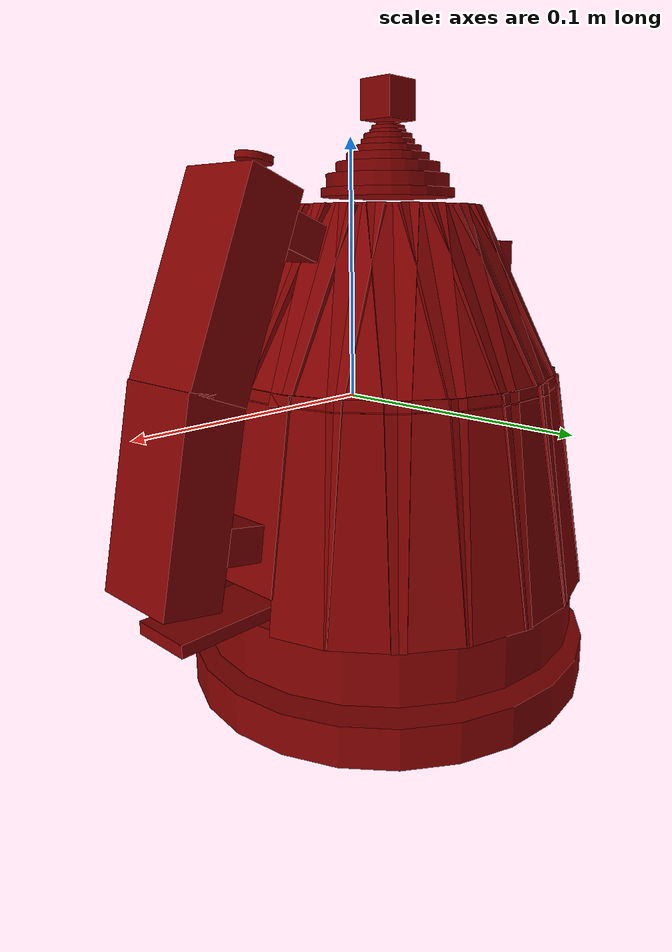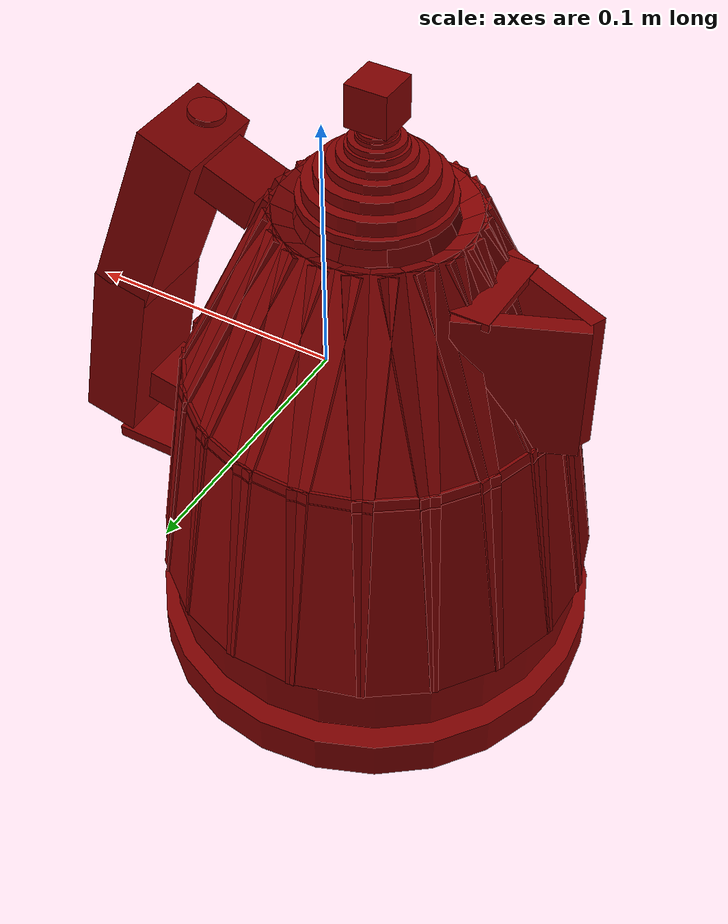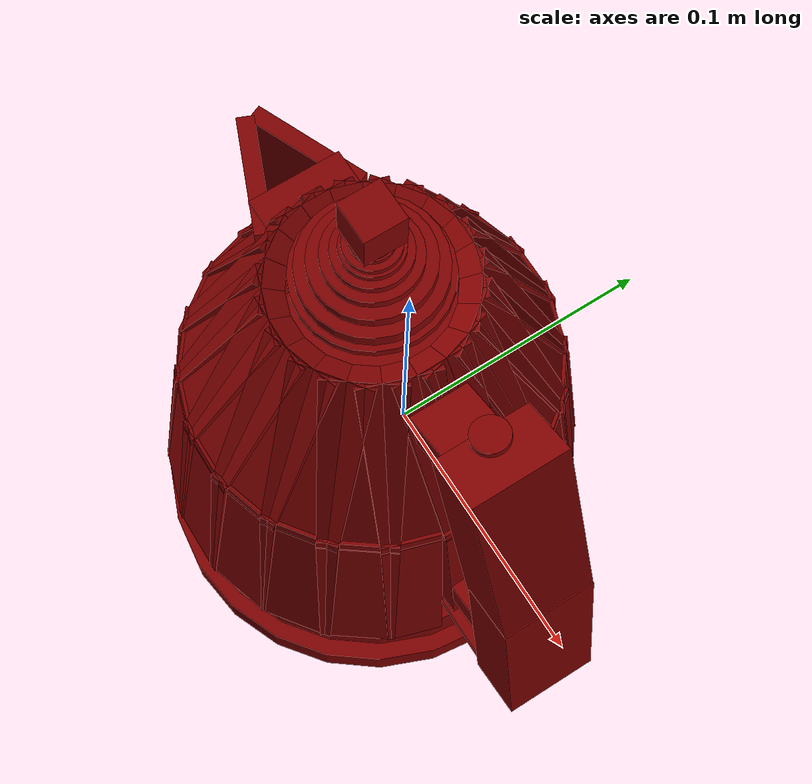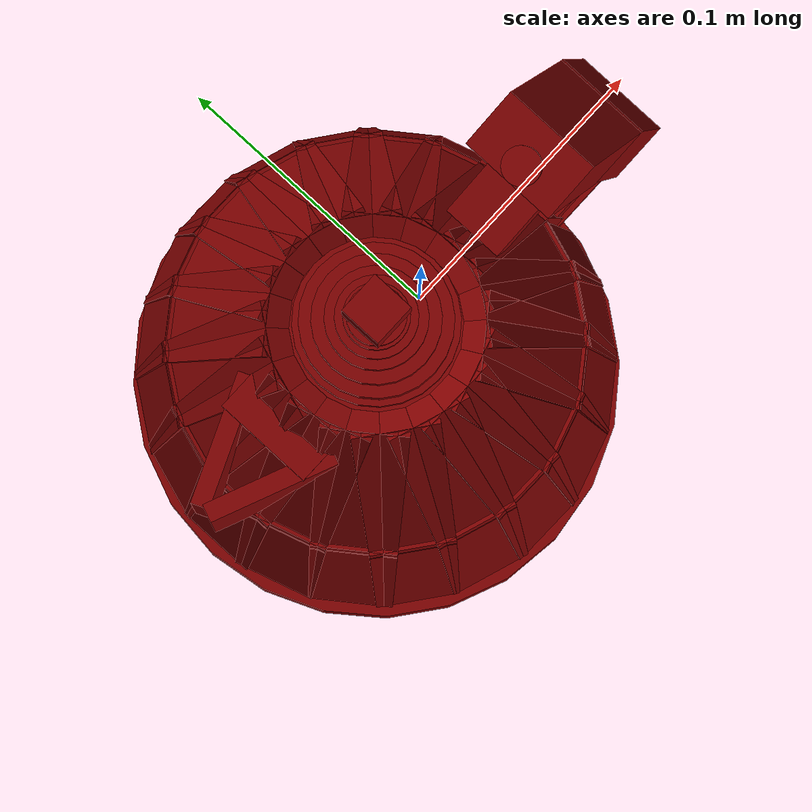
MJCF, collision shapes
<?xml version='1.0' encoding='UTF-8'?>
<mujoco model="model">
  <compiler angle="radian"/>
  <asset>
    <mesh file="visuals/Body001.obj" name="Body001_vis"/>
    <mesh file="visuals/Button001.obj" name="Button001_vis"/>
    <mesh file="visuals/Handle001.obj" name="Handle001_vis"/>
    <mesh file="visuals/Lever001.obj" name="Lever001_vis"/>
    <mesh file="visuals/Lid001.obj" name="Lid001_vis"/>
    <texture file="visuals/T_BC001.png" name="Body001_material" type="2d"/>
    <material name="Body001_material" rgba="1 1 1 1.0" texture="Body001_material" shininess="0.5" specular="0.3103448502657381"/>
    <texture file="visuals/T_BC001.png" name="Handle001_material" type="2d"/>
    <material name="Handle001_material" rgba="1 1 1 1.0" texture="Handle001_material" shininess="0.5" specular="0.3103448502657381"/>
    <texture file="visuals/T_BC001.png" name="Button001_material" type="2d"/>
    <material name="Button001_material" rgba="1 1 1 1.0" texture="Button001_material" shininess="0.5" specular="0.3103448502657381"/>
    <texture file="visuals/T_BC001.png" name="Lever001_material" type="2d"/>
    <material name="Lever001_material" rgba="1 1 1 1.0" texture="Lever001_material" shininess="0.5" specular="0.3103448502657381"/>
    <texture file="visuals/T_BC001.png" name="Lid001_material" type="2d"/>
    <material name="Lid001_material" rgba="1 1 1 1.0" texture="Lid001_material" shininess="0.5" specular="0.3103448502657381"/>
  </asset>
  <default>
    <default class="visual">
      <geom conaffinity="0" contype="0" group="1" type="mesh"/>
    </default>
    <default class="collision">
      <geom group="0" rgba="0.5 0 0 0.5"/>
    </default>
    <default class="spawn">
      <geom group="0" rgba="1 1 1 0.5" contype="0" conaffinity="0"/>
      <site group="0" rgba="1 1 1 0.5"/>
    </default>
    <default class="region">
      <geom group="1" conaffinity="0" contype="0" rgba="0 1 0 0"/>
    </default>
  </default>
  <worldbody>
    <body>
      <body name="object">
        <geom mesh="Body001_vis" type="mesh" solimp="0.998 0.998 0.001" solref="0.001 1" density="100" friction="0.95 0.3 0.1" class="visual" material="Body001_material"/>
        <geom class="collision" type="cylinder" pos="-0.021066 0.000000 -0.114406" size="0.0858076885342598 0.008392764255404472" quat="1.0 0.0 0.0 0.0"/>
        <body name="Handle001">
          <joint axis="0.0 0.0 1.0" pos="0.001417 0.000073 -0.008073" limited="true" name="Handle001_joint" range="0.0 0.1" type="slide" damping="1" frictionloss="1" armature=".01" stiffness="0.05"/>
          <geom mesh="Handle001_vis" type="mesh" solimp="0.998 0.998 0.001" solref="0.001 1" density="100" friction="0.95 0.3 0.1" class="visual" material="Handle001_material"/>
          <geom class="collision" type="cylinder" pos="-0.021156 0.000000 -0.089417" size="0.08030083030462265 0.011650314554572105" quat="1.0 0.0 0.0 0.0"/>
          <geom class="collision" type="box" pos="-0.093040 -0.000143 -0.035317" size="0.004059980623424053 0.014695623889565468 0.044109322130680084" quat="0.997124195098877 6.028130727097107e-16 0.07578504085540771 1.0182403364922266e-08"/>
          <geom class="collision" type="box" pos="-0.070039 -0.000143 0.038148" size="0.004059980623424053 0.014695624820888042 0.03961717337369919" quat="0.9738648533821106 3.839531740235016e-15 0.22712816298007965 3.051667363251909e-08"/>
          <geom class="collision" type="box" pos="-0.060694 0.028745 0.038148" size="0.004059980623424053 0.014695626683533192 0.03961717337369919" quat="0.9257121086120605 0.07053609937429428 0.21589778363704681 -0.30243992805480957"/>
          <geom class="collision" type="box" pos="-0.079259 0.042325 -0.035317" size="0.004059980623424053 0.014695624820888042 0.044109322130680084" quat="0.947821319103241 0.023535536602139473 0.07203784584999084 -0.3096633851528168"/>
          <geom class="collision" type="box" pos="-0.042660 0.068593 -0.035317" size="0.004059980623424053 0.014695623889565468 0.044109322130680084" quat="0.8030538558959961 0.04492328688502312 0.061034996062517166 -0.5910677909851074"/>
          <geom class="collision" type="box" pos="-0.035823 0.046631 0.038148" size="0.004059980623424053 0.014695624820888042 0.03961717337369919" quat="0.7843215465545654 0.1346353143453598 0.18292218446731567 -0.5772802829742432"/>
          <geom class="collision" type="box" pos="-0.005823 0.046417 0.038148" size="0.004059980623424053 0.014695624820888042 0.03961717337369919" quat="0.569338321685791 0.18427114188671112 0.13278304040431976 -0.7901055216789246"/>
          <geom class="collision" type="box" pos="0.001456 0.068236 -0.035317" size="0.004059980623424053 0.014695623889565468 0.044109322130680084" quat="0.5829359889030457 0.06148510426282883 0.04430524259805679 -0.8089760541915894"/>
          <geom class="collision" type="box" pos="0.036579 0.042826 -0.035317" size="0.0040599810890853405 0.014695623889565468 0.044109322130680084" quat="0.3118728697299957 0.07198276370763779 0.02370346523821354 -0.947096586227417"/>
          <geom class="collision" type="box" pos="0.018078 0.029160 0.038148" size="0.004059980623424053 0.014695624820888042 0.03961717337369919" quat="0.3045981228351593 0.21573257446289062 0.07103938609361649 -0.925004243850708"/>
          <geom class="collision" type="box" pos="0.027724 0.000634 0.038148" size="0.004059980623424053 0.014695624820888042 0.03961717337369919" quat="0.004890267737209797 0.22712522745132446 0.0011405178811401129 -0.9738526344299316"/>
          <geom class="collision" type="box" pos="0.049654 0.000854 -0.028317" size="0.004059980623424053 0.014695623889565468 0.03702772408723831" quat="0.0050069475546479225 0.07578408718109131 0.0003805453306995332 -0.9971116185188293"/>
          <geom class="collision" type="box" pos="-0.060538 -0.028959 0.038148" size="0.004059980623424053 0.014695624820888042 0.03961717337369919" quat="0.9257802963256836 -0.07048739492893219 0.21591375768184662 0.302231103181839"/>
          <geom class="collision" type="box" pos="-0.079109 -0.042530 -0.035317" size="0.004059980623424053 0.014695624820888042 0.044109322130680084" quat="0.9478912949562073 -0.023519271984696388 0.07204318046569824 0.30944913625717163"/>
          <geom class="collision" type="box" pos="-0.044116 -0.068119 -0.035317" size="0.004059980623424053 0.014695623889565468 0.044109322130680084" quat="0.8104644417762756 -0.044147834181785583 0.06159822270274162 0.5808649063110352"/>
          <geom class="collision" type="box" pos="-0.036726 -0.046338 0.038148" size="0.004059980623424053 0.014695624820888042 0.03961717337369919" quat="0.7915591597557068 -0.13231132924556732 0.18461015820503235 0.5673155188560486"/>
          <geom class="collision" type="box" pos="-0.006727 -0.046706 0.038148" size="0.004059980623424053 0.014695624820888042 0.03961717337369919" quat="0.5792847871780396 -0.18257716298103333 0.1351027935743332 0.782842218875885"/>
          <geom class="collision" type="box" pos="-0.000003 -0.068702 -0.035317" size="0.004059980623424053 0.014695623889565468 0.044109322130680084" quat="0.5931200981140137 -0.060919880867004395 0.045079272240400314 0.8015392422676086"/>
          <geom class="collision" type="box" pos="0.036731 -0.042622 -0.035317" size="0.004059980623424053 0.014695623889565468 0.044109322130680084" quat="0.31208693981170654 -0.0719774141907692 0.023719755932688713 0.9470260739326477"/>
          <geom class="collision" type="box" pos="0.018236 -0.028947 0.038148" size="0.004059980623424053 0.014695624820888042 0.03961717337369919" quat="0.3048068583011627 -0.21571661531925201 0.07108808308839798 0.9249354600906372"/>
          <geom class="collision" type="box" pos="-0.021833 -0.048879 0.038148" size="0.004059980623424053 0.014695626683533192 0.03961717337369919" quat="0.6943837404251099 -0.15924978256225586 0.16194653511047363 0.6828206777572632"/>
          <geom class="collision" type="box" pos="-0.022219 -0.071877 -0.035317" size="0.004059980157762766 0.014695624820888042 0.044109322130680084" quat="0.7109682559967041 -0.053136296570301056 0.054036159068346024 0.6991285681724548"/>
          <geom class="collision" type="box" pos="-0.064787 -0.057129 -0.035317" size="0.0040599810890853405 0.014695623889565468 0.044109322130680084" quat="0.8942340612411499 -0.03352803364396095 0.06796501576900482 0.44113728404045105"/>
          <geom class="collision" type="box" pos="-0.050790 -0.038877 0.038148" size="0.0040599810890853405 0.014695624820888042 0.03961717337369919" quat="0.873374879360199 -0.10048362612724304 0.2036915123462677 0.43084701895713806"/>
          <geom class="collision" type="box" pos="-0.067917 -0.014246 0.038148" size="0.004059980623424053 0.014695624820888042 0.03961717337369919" quat="0.963448166847229 -0.03313129022717476 0.22469866275787354 0.1420581340789795"/>
          <geom class="collision" type="box" pos="-0.089940 -0.020885 -0.035317" size="0.004059980623424053 0.014695623889565468 0.044109322130680084" quat="0.9864586591720581 -0.01105478871613741 0.074974425137043 0.14545078575611115"/>
          <geom class="collision" type="box" pos="-0.089440 0.022464 -0.035317" size="0.0040599810890853405 0.014695623889565468 0.044109322130680084" quat="0.9844032526016235 0.012066864408552647 0.0748182013630867 -0.15876683592796326"/>
          <geom class="collision" type="box" pos="-0.067605 0.015232 0.038148" size="0.004059980623424053 0.014695624820888042 0.03961717337369919" quat="0.9614406824111938 0.03616442158818245 0.22423055768013 -0.15506334602832794"/>
          <geom class="collision" type="box" pos="0.021306 -0.058004 -0.035317" size="0.004059980623424053 0.014695623889565468 0.044109322130680084" quat="0.4519715905189514 -0.06755255162715912 0.034351468086242676 0.8888072371482849"/>
          <geom class="collision" type="box" pos="0.007757 -0.039417 0.038148" size="0.004059980623424053 0.014695624820888042 0.03961717337369919" quat="0.4414288103580475 -0.20245535671710968 0.10295155644416809 0.8680745363235474"/>
          <geom class="collision" type="box" pos="0.025372 -0.014994 0.038148" size="0.004059980623424053 0.014695624820888042 0.03961717337369919" quat="0.15260346233844757 -0.22432225942611694 0.035590700805187225 0.961834192276001"/>
          <geom class="collision" type="box" pos="0.046085 -0.025672 -0.035317" size="0.004059980623424053 0.010954035446047783 0.044109322130680084" quat="0.1562482863664627 -0.07484882324934006 0.011875435709953308 0.9848061203956604"/>
          <geom class="collision" type="box" pos="0.046708 0.023884 -0.035317" size="0.004059980623424053 0.011926285922527313 0.044109322130680084" quat="0.14797359704971313 0.07494590431451797 0.011246522888541222 -0.9860833883285522"/>
          <geom class="collision" type="box" pos="0.025533 0.014485 0.038148" size="0.004059980623424053 0.014695624820888042 0.03961717337369919" quat="0.14452201128005981 0.22461330890655518 0.0337059311568737 -0.9630815982818604"/>
          <geom class="collision" type="box" pos="0.008279 0.039028 0.038148" size="0.004059980623424053 0.014695624820888042 0.03961717337369919" quat="0.43307963013648987 0.2034338116645813 0.10100430995225906 -0.8722699284553528"/>
          <geom class="collision" type="box" pos="0.022183 0.057351 -0.035317" size="0.004059980623424053 0.014695623889565468 0.044109322130680084" quat="0.44342318177223206 0.06787903606891632 0.03370176628232002 -0.893102765083313"/>
          <geom class="collision" type="box" pos="-0.020460 0.071881 -0.035317" size="0.004059980623424053 0.014695623889565468 0.044109322130680084" quat="0.7009451389312744 0.05390004441142082 0.05327436327934265 -0.7091773748397827"/>
          <geom class="collision" type="box" pos="-0.020728 0.048882 0.038148" size="0.004059980623424053 0.014695624820888042 0.03961717337369919" quat="0.6845947504043579 0.16153864562511444 0.15966352820396423 -0.6926347613334656"/>
          <geom class="collision" type="box" pos="-0.049670 0.039705 0.038148" size="0.004059980623424053 0.014695624820888042 0.03961717337369919" quat="0.8658470511436462 0.10396686941385269 0.20193585753440857 -0.4457821547985077"/>
          <geom class="collision" type="box" pos="-0.063033 0.058427 -0.035317" size="0.004059980623424053 0.014695623889565468 0.044109322130680084" quat="0.8865264654159546 0.0346902534365654 0.06737921386957169 -0.45642900466918945"/>
          <geom class="collision" type="box" pos="-0.081017 0.011804 0.033939" size="0.02263140305876732 0.003199826693162322 0.026868857443332672" quat="0.9801619052886963 0.0 0.0 0.19819840788841248"/>
          <geom class="collision" type="box" pos="-0.081293 -0.009011 0.033939" size="0.02263140305876732 0.003199826693162322 0.026868857443332672" quat="0.9801619052886963 0.0 -0.0 -0.19819840788841248"/>
          <geom class="collision" type="box" pos="-0.081293 -0.009011 0.033939" size="0.02263140305876732 0.003199826693162322 0.026868857443332672" quat="0.9801619052886963 0.0 -0.0 -0.19819840788841248"/>
          <geom class="collision" type="box" pos="-0.065986 0.001804 0.059840" size="0.007359762210398912 0.017842348664999008 0.0014990366762503982" quat="1.0 0.0 0.0 0.0"/>
          <geom class="collision" type="box" pos="0.035597 -0.002357 0.064878" size="0.012230172753334045 0.011019567959010601 0.006966381799429655" quat="0.9829473495483398 -2.5049826274413985e-15 -0.18388724327087402 -2.4706876544655643e-08"/>
          <geom class="collision" type="box" pos="0.066169 -0.002357 -0.043644" size="0.012230172753334045 0.011019566096365452 0.006966381799429655" quat="0.9957739114761353 -2.622081120751043e-15 -0.09183843433856964 -1.2339298471886195e-08"/>
          <geom class="collision" type="box" pos="0.065042 0.000000 0.047508" size="0.011350050568580627 0.01791900396347046 0.03782914951443672" quat="0.9825060367584229 1.2681704229699684e-15 -0.18623079359531403 -2.502175178165089e-08"/>
          <geom class="collision" type="box" pos="0.085955 -0.000000 -0.021623" size="0.011350050568580627 0.01791900396347046 0.0367632694542408" quat="0.9951649904251099 -2.846998861433161e-15 -0.09821758419275284 -1.3196401305037853e-08"/>
          <body name="Button001">
            <joint axis="0.1736481934785843 0.0 -0.9848079085350037" pos="0.046097 -0.000911 0.089731" limited="true" name="Button001_joint" range="0.0 0.002" type="slide" damping="1" frictionloss="1" armature=".01" stiffness="0.05" springref="-0.8"/>
            <geom mesh="Button001_vis" type="mesh" solimp="0.998 0.998 0.001" solref="0.001 1" density="100" friction="0.95 0.3 0.1" class="visual" material="Button001_material"/>
            <geom class="collision" type="cylinder" pos="0.046158 -0.000911 0.089385" size="0.006663801614195108 0.0011896084761247039" quat="0.9961947202682495 1.2741335349186387e-15 -0.08715573698282242 -1.1710145741972156e-08"/>
          </body>
          <body name="Lever001">
            <joint axis="0.0 1.0 0.0" pos="0.055778 -0.001307 -0.071976" limited="true" name="Lever001_joint" range="0.0 0.2617993877991494" type="hinge" damping="1" frictionloss="1" armature=".01" stiffness="1" springref="-0.4"/>
            <geom mesh="Lever001_vis" type="mesh" solimp="0.998 0.998 0.001" solref="0.001 1" density="100" friction="0.95 0.3 0.1" class="visual" material="Lever001_material"/>
            <geom class="collision" type="box" pos="0.073178 -0.001316 -0.071864" size="0.021089309826493263 0.012953836470842361 0.002487974241375923" quat="1.0 0.0 0.0 0.0"/>
          </body>
          <body name="Lid001">
            <joint axis="0.0 1.0 0.0" pos="0.008328 -0.000046 0.076400" limited="true" name="Lid001_joint" range="0.0 1.5707963267948966" type="hinge" damping="1" frictionloss="1" armature=".01" stiffness="0.05"/>
            <geom mesh="Lid001_vis" type="mesh" solimp="0.998 0.998 0.001" solref="0.001 1" density="100" friction="0.95 0.3 0.1" class="visual" material="Lid001_material"/>
            <geom class="collision" type="cylinder" pos="-0.021089 0.000000 0.080160" size="0.027157625183463097 0.0016860688338056207" quat="1.0 0.0 0.0 0.0"/>
            <geom class="collision" type="cylinder" pos="-0.021089 0.000000 0.084559" size="0.02498858980834484 0.00275141722522676" quat="1.0 0.0 0.0 0.0"/>
            <geom class="collision" type="cylinder" pos="-0.021089 0.000000 0.089538" size="0.02094361186027527 0.0023060371167957783" quat="1.0 0.0 0.0 0.0"/>
            <geom class="collision" type="cylinder" pos="-0.021089 0.000000 0.093510" size="0.016704369336366653 0.0018392670899629593" quat="1.0 0.0 0.0 0.0"/>
            <geom class="collision" type="cylinder" pos="-0.021089 0.000000 0.096770" size="0.01343917939811945 0.0014797470066696405" quat="1.0 0.0 0.0 0.0"/>
            <geom class="collision" type="cylinder" pos="-0.021089 0.000000 0.099465" size="0.01079136785119772 0.001188204507343471" quat="1.0 0.0 0.0 0.0"/>
            <geom class="collision" type="cylinder" pos="-0.021089 0.000000 0.101729" size="0.009684988297522068 0.001066384487785399" quat="1.0 0.0 0.0 0.0"/>
            <geom class="collision" type="cylinder" pos="-0.021089 0.000000 0.103556" size="0.007362497504800558 0.0008106621098704636" quat="1.0 0.0 0.0 0.0"/>
            <geom class="collision" type="cylinder" pos="-0.021089 0.000000 0.105145" size="0.006678245961666107 0.0007353212567977607" quat="1.0 0.0 0.0 0.0"/>
            <geom class="collision" type="cylinder" pos="-0.021089 0.000000 0.106456" size="0.004696066025644541 0.0005170694785192609" quat="1.0 0.0 0.0 0.0"/>
            <geom class="collision" type="box" pos="-0.021089 0.000000 0.115590" size="0.0077191004529595375 0.0077191004529595375 0.0077191004529595375" quat="1.0 0.0 0.0 0.0"/>
          </body>
        </body>
        <geom class="region" name="reg_main" type="box" pos="0.0 0.0 0.0" size="0.105129 0.084074 0.122814"/>
      </body>
    </body>
  </worldbody>
  <actuator>
    <motor name="Handle001_joint_actuator" joint="Handle001_joint" gear="10"/>
    <motor name="Button001_joint_actuator" joint="Button001_joint" gear="0.5"/>
    <motor name="Lever001_joint_actuator" joint="Lever001_joint" gear="0.5"/>
    <motor name="Lid001_joint_actuator" joint="Lid001_joint" gear="0.5"/>
  </actuator>
</mujoco>
